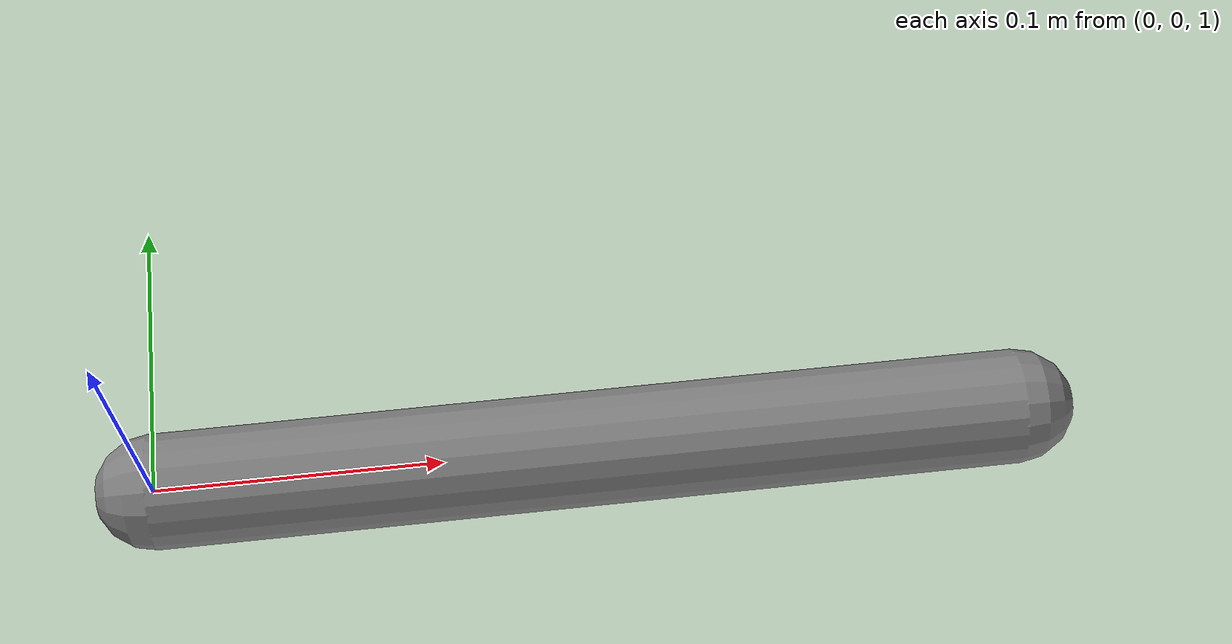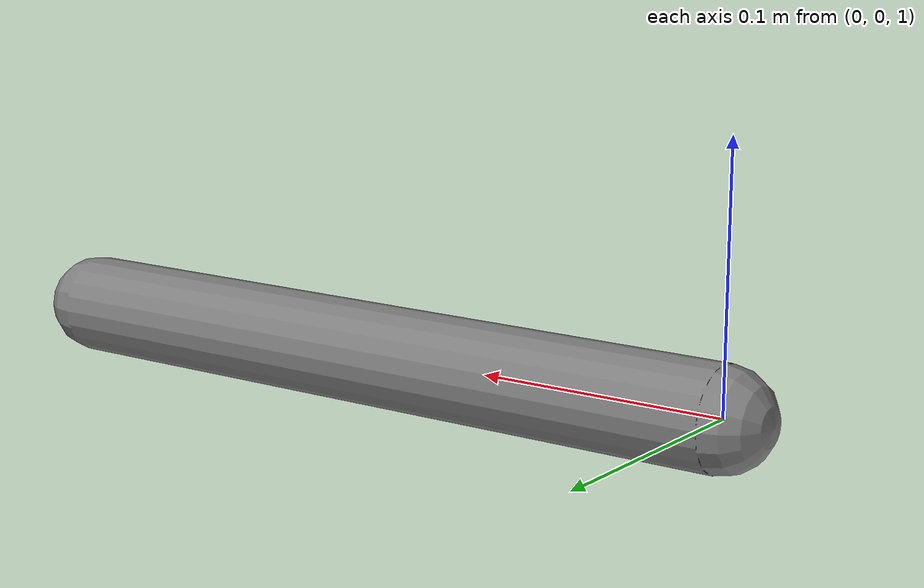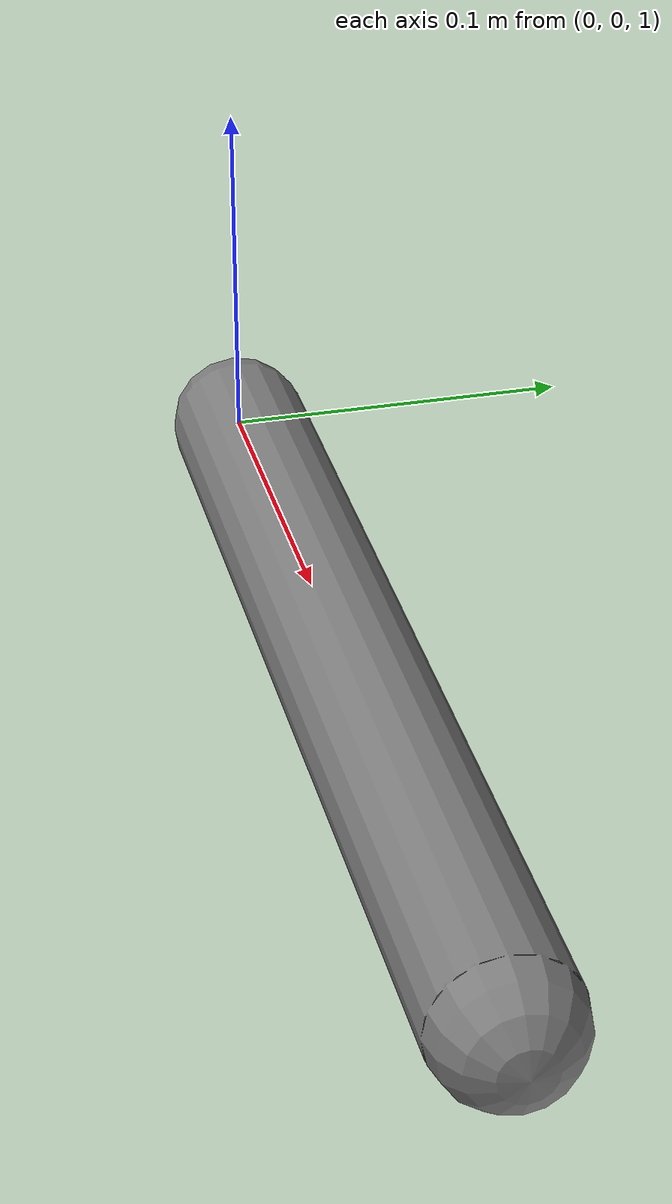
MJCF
<mujoco model="actuated_system">
  <option gravity="0 0 -9.81" timestep="0.002"/>
  <worldbody>
    <body name="link" pos="0 0 1">
      <joint name="hinge" type="hinge" axis="0 1 0"/>
      <geom name="link_geom" type="capsule" fromto="0 0 0 0.3 0 0"
            size="0.02" mass="1.0"/>
    </body>
  </worldbody>

  <actuator>
    <motor name="motor" joint="hinge" gear="1"/>
    <general name="pos_servo" joint="hinge"
             gaintype="fixed" gainprm="20"
             biastype="affine" biasprm="0 -20 0"
             dyntype="integrator" dynprm="1"/>
  </actuator>
</mujoco>
